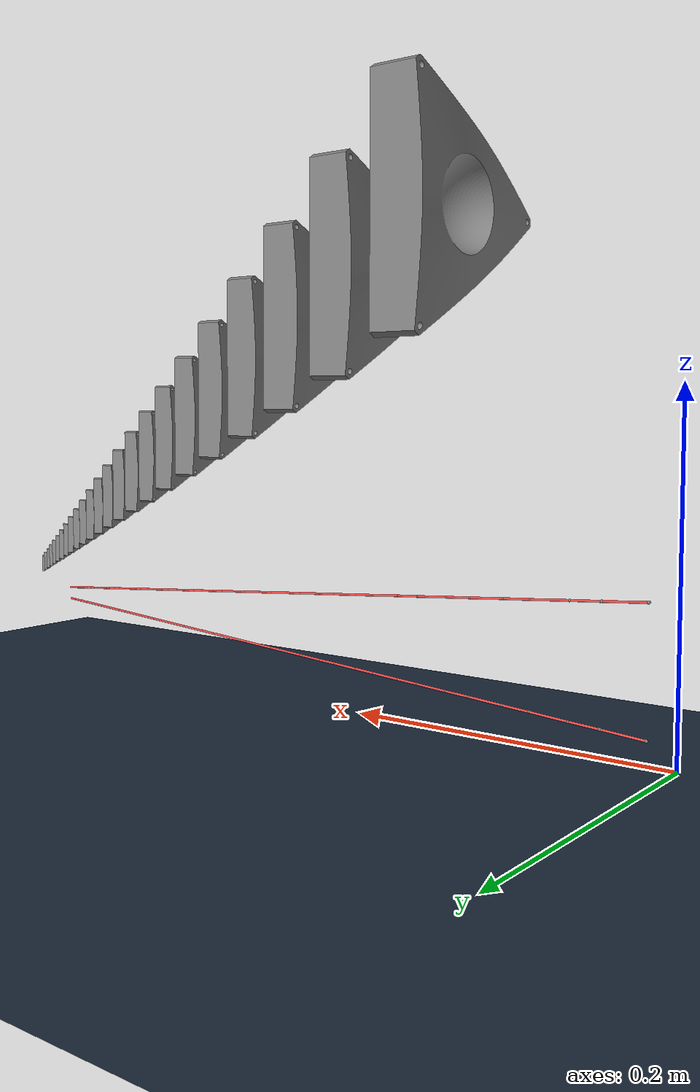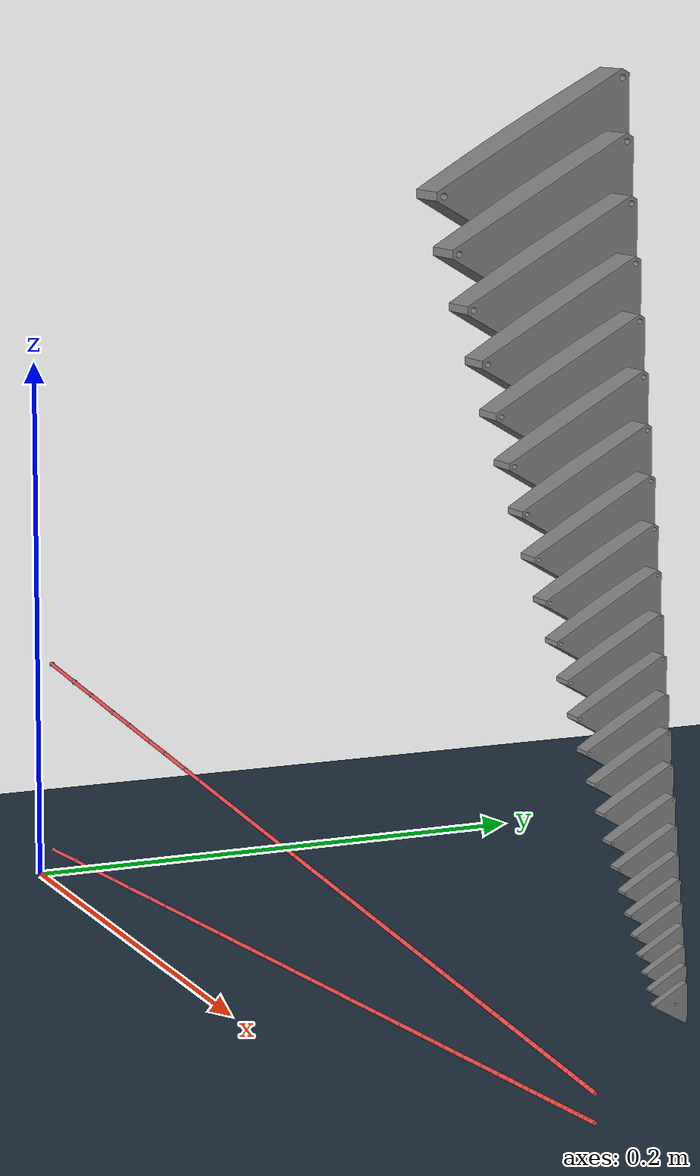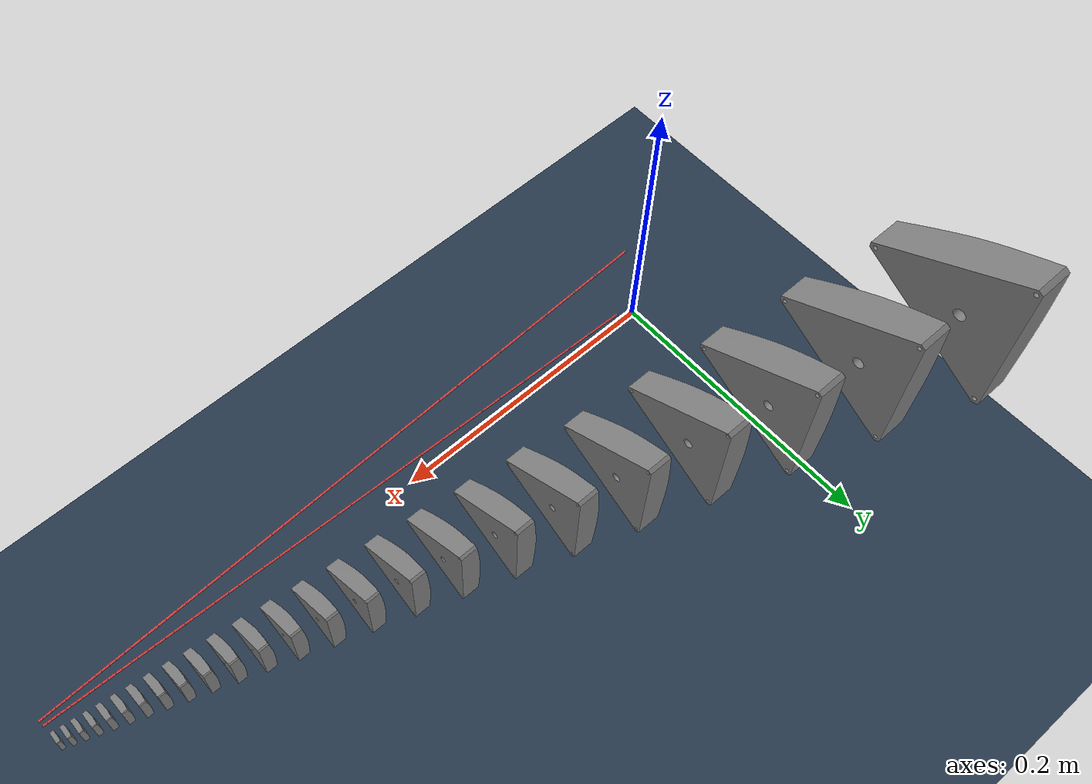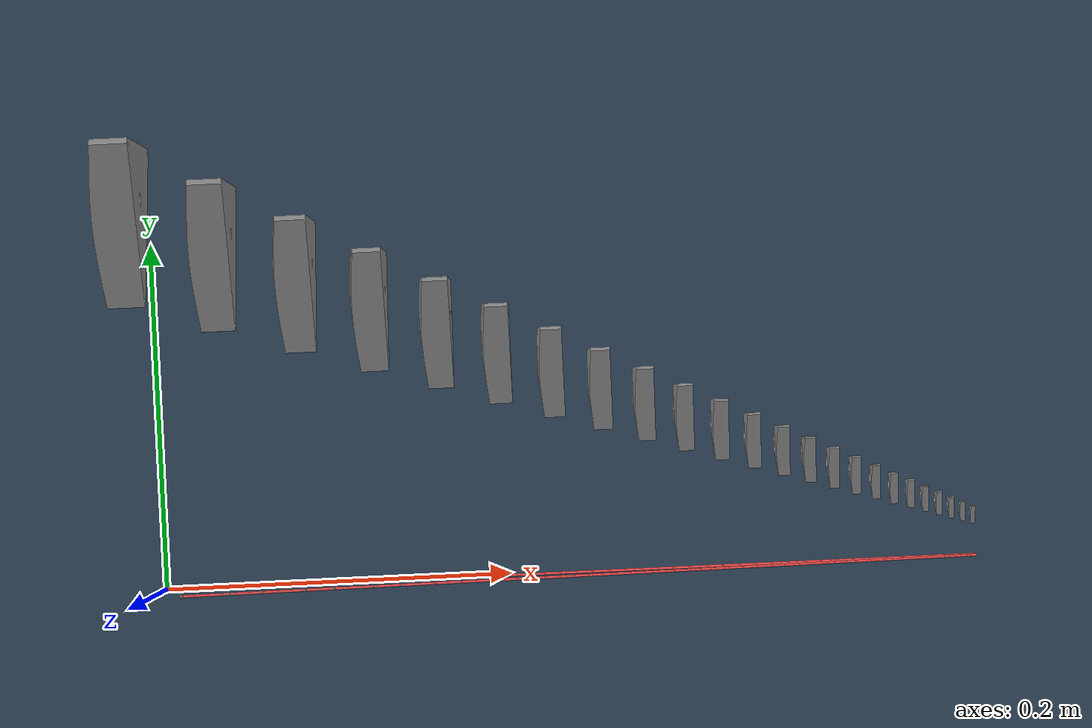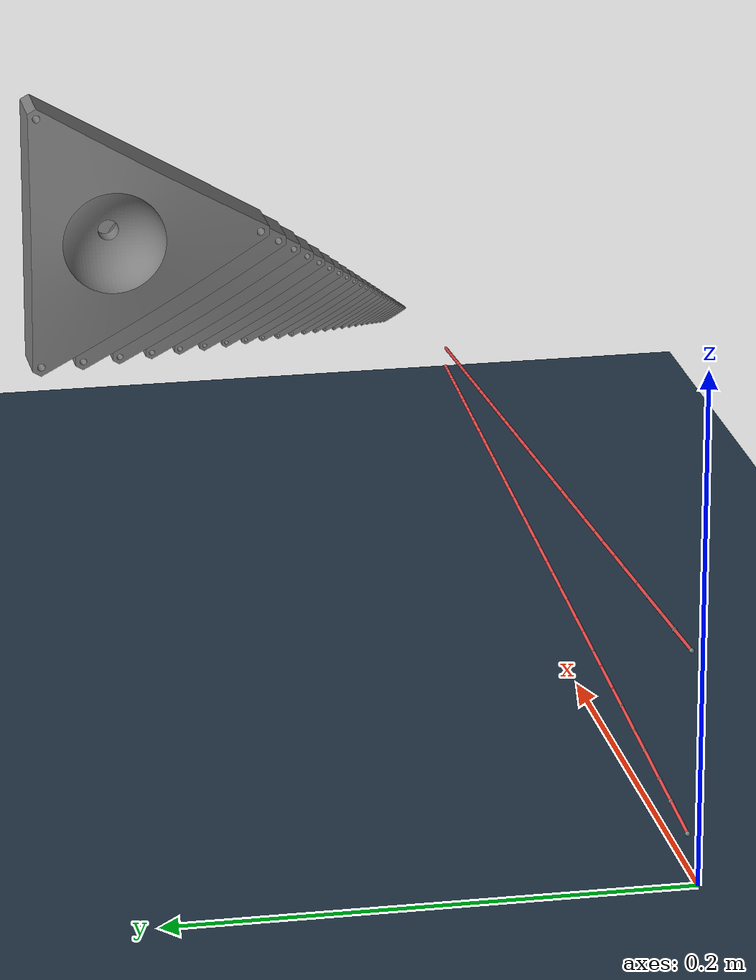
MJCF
<mujoco model="spiral_robot">
  <compiler angle="radian" meshdir="." />
  <option gravity="0 0 -9.81" timestep="0.001" solver="Newton" />
  <default>
    <geom density="1100" friction="1 0.5 0.5" contype="0" conaffinity="1" />
    <joint damping="1.0" armature="0.01" />
  </default>
  <asset>
    <mesh name="baselink_1" file="baselink.stl" scale="0.001000000 0.001000000 0.001000000" />
    <mesh name="baselink_2" file="baselink.stl" scale="0.000911774 0.000911774 0.000911774" />
    <mesh name="baselink_3" file="baselink.stl" scale="0.000831332 0.000831332 0.000831332" />
    <mesh name="baselink_4" file="baselink.stl" scale="0.000757987 0.000757987 0.000757987" />
    <mesh name="baselink_5" file="baselink.stl" scale="0.000691113 0.000691113 0.000691113" />
    <mesh name="baselink_6" file="baselink.stl" scale="0.000630139 0.000630139 0.000630139" />
    <mesh name="baselink_7" file="baselink.stl" scale="0.000574545 0.000574545 0.000574545" />
    <mesh name="baselink_8" file="baselink.stl" scale="0.000523855 0.000523855 0.000523855" />
    <mesh name="baselink_9" file="baselink.stl" scale="0.000477638 0.000477638 0.000477638" />
    <mesh name="baselink_10" file="baselink.stl" scale="0.000435498 0.000435498 0.000435498" />
    <mesh name="baselink_11" file="baselink.stl" scale="0.000397076 0.000397076 0.000397076" />
    <mesh name="baselink_12" file="baselink.stl" scale="0.000362043 0.000362043 0.000362043" />
    <mesh name="baselink_13" file="baselink.stl" scale="0.000330102 0.000330102 0.000330102" />
    <mesh name="baselink_14" file="baselink.stl" scale="0.000300978 0.000300978 0.000300978" />
    <mesh name="baselink_15" file="baselink.stl" scale="0.000274424 0.000274424 0.000274424" />
    <mesh name="baselink_16" file="baselink.stl" scale="0.000250213 0.000250213 0.000250213" />
    <mesh name="baselink_17" file="baselink.stl" scale="0.000228138 0.000228138 0.000228138" />
    <mesh name="baselink_18" file="baselink.stl" scale="0.000208010 0.000208010 0.000208010" />
    <mesh name="baselink_19" file="baselink.stl" scale="0.000189658 0.000189658 0.000189658" />
    <mesh name="baselink_20" file="baselink.stl" scale="0.000172926 0.000172926 0.000172926" />
    <mesh name="baselink_21" file="baselink.stl" scale="0.000157669 0.000157669 0.000157669" />
    <mesh name="baselink_22" file="baselink.stl" scale="0.000143759 0.000143759 0.000143759" />
    <mesh name="baselink_23" file="baselink.stl" scale="0.000131075 0.000131075 0.000131075" />
    <mesh name="baselink_24" file="baselink.stl" scale="0.000119511 0.000119511 0.000119511" />
    <texture name="texplane" type="2d" builtin="checker" rgb1=".2 .3 .4" rgb2=".1 0.15 0.2" width="512" height="512" mark="cross" markrgb=".8 .8 .8" />
    <material name="matplane" reflectance="0.3" texture="texplane" texrepeat="1 1" texuniform="true" />
  </asset>
  <worldbody>
    <geom name="ground" type="plane" size="10 10 1" pos="0 0 0" quat="1 0 0 0" material="matplane" condim="3" contype="1" conaffinity="1" />
    <light pos="1 0.5 0.7" dir="-1 -0.5 -1" directional="true" castshadow="false" diffuse="1 1 1" specular="0.3 0.3 0.3" />
    <body name="link1" pos="0 0 0.05" quat="0.5 0.5 0.5 0.5">
      <freejoint />
      <geom type="mesh" mesh="baselink_1" />
      <site name="s1_1" pos="0.000000000 0.036394210 0.016795002" size="0.001000 0.001000 0.001000" />
      <site name="s1_2" pos="0.000000000 0.034423562 0.042801474" size="0.001000 0.001000 0.001000" />
      <site name="s1_3" pos="0.000000000 -0.036394210 0.016795002" size="0.001000 0.001000 0.001000" />
      <site name="s1_4" pos="0.000000000 -0.034423562 0.042801474" size="0.001000 0.001000 0.001000" />
      <body name="link2" pos="0 0 0.045951152">
        <joint name="j1" type="hinge" axis="1 0 0" range="-0.523598776 0.523598776" stiffness="0.150000" damping="0.500000" frictionloss="0.015000" armature="0.010000" />
        <geom type="mesh" mesh="baselink_2" />
        <site name="s2_1" pos="0.000000000 0.033183304 0.015313251" size="0.000912 0.000912 0.000912" />
        <site name="s2_2" pos="0.000000000 0.031386518 0.039025283" size="0.000912 0.000912 0.000912" />
        <site name="s2_3" pos="0.000000000 -0.033183304 0.015313251" size="0.000912 0.000912 0.000912" />
        <site name="s2_4" pos="0.000000000 -0.031386518 0.039025283" size="0.000912 0.000912 0.000912" />
        <body name="link3" pos="0 0 0.041897079">
          <joint name="j2" type="hinge" axis="1 0 0" range="-0.523598776 0.523598776" stiffness="0.124700" damping="0.455887" frictionloss="0.012470" armature="0.009118" />
          <geom type="mesh" mesh="baselink_3" />
          <site name="s3_1" pos="0.000000000 0.030255683 0.013962228" size="0.000831 0.000831 0.000831" />
          <site name="s3_2" pos="0.000000000 0.028617420 0.035582249" size="0.000831 0.000831 0.000831" />
          <site name="s3_3" pos="0.000000000 -0.030255683 0.013962228" size="0.000831 0.000831 0.000831" />
          <site name="s3_4" pos="0.000000000 -0.028617420 0.035582249" size="0.000831 0.000831 0.000831" />
          <body name="link4" pos="0 0 0.038200679">
            <joint name="j3" type="hinge" axis="1 0 0" range="-0.523598776 0.523598776" stiffness="0.103667" damping="0.415666" frictionloss="0.010367" armature="0.008313" />
            <geom type="mesh" mesh="baselink_4" />
            <site name="s4_1" pos="0.000000000 0.027586354 0.012730400" size="0.000758 0.000758 0.000758" />
            <site name="s4_2" pos="0.000000000 0.026092627 0.032442980" size="0.000758 0.000758 0.000758" />
            <site name="s4_3" pos="0.000000000 -0.027586354 0.012730400" size="0.000758 0.000758 0.000758" />
            <site name="s4_4" pos="0.000000000 -0.026092627 0.032442980" size="0.000758 0.000758 0.000758" />
            <body name="link5" pos="0 0 0.034830396">
              <joint name="j4" type="hinge" axis="1 0 0" range="-0.523598776 0.523598776" stiffness="0.086182" damping="0.378993" frictionloss="0.008618" armature="0.007580" />
              <geom type="mesh" mesh="baselink_5" />
              <site name="s5_1" pos="0.000000000 0.025152528 0.011607252" size="0.000691 0.000691 0.000691" />
              <site name="s5_2" pos="0.000000000 0.023790586 0.029580674" size="0.000691 0.000691 0.000691" />
              <site name="s5_3" pos="0.000000000 -0.025152528 0.011607252" size="0.000691 0.000691 0.000691" />
              <site name="s5_4" pos="0.000000000 -0.023790586 0.029580674" size="0.000691 0.000691 0.000691" />
              <body name="link6" pos="0 0 0.031757459">
                <joint name="j5" type="hinge" axis="1 0 0" range="-0.523598776 0.523598776" stiffness="0.071646" damping="0.345556" frictionloss="0.007165" armature="0.006911" />
                <geom type="mesh" mesh="baselink_6" />
                <site name="s6_1" pos="0.000000000 0.022933428 0.010583193" size="0.000630 0.000630 0.000630" />
                <site name="s6_2" pos="0.000000000 0.021691645 0.026970898" size="0.000630 0.000630 0.000630" />
                <site name="s6_3" pos="0.000000000 -0.022933428 0.010583193" size="0.000630 0.000630 0.000630" />
                <site name="s6_4" pos="0.000000000 -0.021691645 0.026970898" size="0.000630 0.000630 0.000630" />
                <body name="link7" pos="0 0 0.028955634">
                  <joint name="j6" type="hinge" axis="1 0 0" range="-0.523598776 0.523598776" stiffness="0.059561" damping="0.315070" frictionloss="0.005956" armature="0.006301" />
                  <geom type="mesh" mesh="baselink_7" />
                  <site name="s7_1" pos="0.000000000 0.020910109 0.009649483" size="0.000575 0.000575 0.000575" />
                  <site name="s7_2" pos="0.000000000 0.019777884 0.024591371" size="0.000575 0.000575 0.000575" />
                  <site name="s7_3" pos="0.000000000 -0.020910109 0.009649483" size="0.000575 0.000575 0.000575" />
                  <site name="s7_4" pos="0.000000000 -0.019777884 0.024591371" size="0.000575 0.000575 0.000575" />
                  <body name="link8" pos="0 0 0.026401003">
                    <joint name="j7" type="hinge" axis="1 0 0" range="-0.523598776 0.523598776" stiffness="0.049515" damping="0.287272" frictionloss="0.004951" armature="0.005745" />
                    <geom type="mesh" mesh="baselink_8" />
                    <site name="s8_1" pos="0.000000000 0.019065300 0.008798151" size="0.000524 0.000524 0.000524" />
                    <site name="s8_2" pos="0.000000000 0.018032965 0.022421779" size="0.000524 0.000524 0.000524" />
                    <site name="s8_3" pos="0.000000000 -0.019065300 0.008798151" size="0.000524 0.000524 0.000524" />
                    <site name="s8_4" pos="0.000000000 -0.018032965 0.022421779" size="0.000524 0.000524 0.000524" />
                    <body name="link9" pos="0 0 0.024071755">
                      <joint name="j8" type="hinge" axis="1 0 0" range="-0.523598776 0.523598776" stiffness="0.041164" damping="0.261927" frictionloss="0.004116" armature="0.005239" />
                      <geom type="mesh" mesh="baselink_9" />
                      <site name="s9_1" pos="0.000000000 0.017383250 0.008021928" size="0.000478 0.000478 0.000478" />
                      <site name="s9_2" pos="0.000000000 0.016441994 0.020443602" size="0.000478 0.000478 0.000478" />
                      <site name="s9_3" pos="0.000000000 -0.017383250 0.008021928" size="0.000478 0.000478 0.000478" />
                      <site name="s9_4" pos="0.000000000 -0.016441994 0.020443602" size="0.000478 0.000478 0.000478" />
                      <body name="link10" pos="0 0 0.021948007">
                        <joint name="j9" type="hinge" axis="1 0 0" range="-0.523598776 0.523598776" stiffness="0.034221" damping="0.238819" frictionloss="0.003422" armature="0.004776" />
                        <geom type="mesh" mesh="baselink_10" />
                        <site name="s10_1" pos="0.000000000 0.015849600 0.007314187" size="0.000435 0.000435 0.000435" />
                        <site name="s10_2" pos="0.000000000 0.014991387 0.018639950" size="0.000435 0.000435 0.000435" />
                        <site name="s10_3" pos="0.000000000 -0.015849600 0.007314187" size="0.000435 0.000435 0.000435" />
                        <site name="s10_4" pos="0.000000000 -0.014991387 0.018639950" size="0.000435 0.000435 0.000435" />
                        <body name="link11" pos="0 0 0.020011628">
                          <joint name="j10" type="hinge" axis="1 0 0" range="-0.523598776 0.523598776" stiffness="0.028449" damping="0.217749" frictionloss="0.002845" armature="0.004355" />
                          <geom type="mesh" mesh="baselink_11" />
                          <site name="s11_1" pos="0.000000000 0.014451258 0.006668888" size="0.000397 0.000397 0.000397" />
                          <site name="s11_2" pos="0.000000000 0.013668761 0.016995427" size="0.000397 0.000397 0.000397" />
                          <site name="s11_3" pos="0.000000000 -0.014451258 0.006668888" size="0.000397 0.000397 0.000397" />
                          <site name="s11_4" pos="0.000000000 -0.013668761 0.016995427" size="0.000397 0.000397 0.000397" />
                          <body name="link12" pos="0 0 0.018246088">
                            <joint name="j11" type="hinge" axis="1 0 0" range="-0.523598776 0.523598776" stiffness="0.023651" damping="0.198538" frictionloss="0.002365" armature="0.003971" />
                            <geom type="mesh" mesh="baselink_12" />
                            <site name="s12_1" pos="0.000000000 0.013176285 0.006080520" size="0.000362 0.000362 0.000362" />
                            <site name="s12_2" pos="0.000000000 0.012462825 0.015495993" size="0.000362 0.000362 0.000362" />
                            <site name="s12_3" pos="0.000000000 -0.013176285 0.006080520" size="0.000362 0.000362 0.000362" />
                            <site name="s12_4" pos="0.000000000 -0.012462825 0.015495993" size="0.000362 0.000362 0.000362" />
                            <body name="link13" pos="0 0 0.016636313">
                              <joint name="j12" type="hinge" axis="1 0 0" range="-0.523598776 0.523598776" stiffness="0.019661" damping="0.181022" frictionloss="0.001966" armature="0.003620" />
                              <geom type="mesh" mesh="baselink_13" />
                              <site name="s13_1" pos="0.000000000 0.012013798 0.005544062" size="0.000330 0.000330 0.000330" />
                              <site name="s13_2" pos="0.000000000 0.011363283 0.014128848" size="0.000330 0.000330 0.000330" />
                              <site name="s13_3" pos="0.000000000 -0.012013798 0.005544062" size="0.000330 0.000330 0.000330" />
                              <site name="s13_4" pos="0.000000000 -0.011363283 0.014128848" size="0.000330 0.000330 0.000330" />
                              <body name="link14" pos="0 0 0.015168563">
                                <joint name="j13" type="hinge" axis="1 0 0" range="-0.523598776 0.523598776" stiffness="0.016345" damping="0.165051" frictionloss="0.001634" armature="0.003301" />
                                <geom type="mesh" mesh="baselink_14" />
                                <site name="s14_1" pos="0.000000000 0.010953872 0.005054933" size="0.000301 0.000301 0.000301" />
                                <site name="s14_2" pos="0.000000000 0.010360749 0.012882320" size="0.000301 0.000301 0.000301" />
                                <site name="s14_3" pos="0.000000000 -0.010953872 0.005054933" size="0.000301 0.000301 0.000301" />
                                <site name="s14_4" pos="0.000000000 -0.010360749 0.012882320" size="0.000301 0.000301 0.000301" />
                                <body name="link15" pos="0 0 0.013830305">
                                  <joint name="j14" type="hinge" axis="1 0 0" range="-0.523598776 0.523598776" stiffness="0.013588" damping="0.150489" frictionloss="0.001359" armature="0.003010" />
                                  <geom type="mesh" mesh="baselink_15" />
                                  <site name="s15_1" pos="0.000000000 0.009987459 0.004608958" size="0.000274 0.000274 0.000274" />
                                  <site name="s15_2" pos="0.000000000 0.009446665 0.011745768" size="0.000274 0.000274 0.000274" />
                                  <site name="s15_3" pos="0.000000000 -0.009987459 0.004608958" size="0.000274 0.000274 0.000274" />
                                  <site name="s15_4" pos="0.000000000 -0.009446665 0.011745768" size="0.000274 0.000274 0.000274" />
                                  <body name="link16" pos="0 0 0.012610117">
                                    <joint name="j15" type="hinge" axis="1 0 0" range="-0.523598776 0.523598776" stiffness="0.011296" damping="0.137212" frictionloss="0.001130" armature="0.002744" />
                                    <geom type="mesh" mesh="baselink_16" />
                                    <site name="s16_1" pos="0.000000000 0.009106308 0.004202329" size="0.000250 0.000250 0.000250" />
                                    <site name="s16_2" pos="0.000000000 0.008613226 0.010709489" size="0.000250 0.000250 0.000250" />
                                    <site name="s16_3" pos="0.000000000 -0.009106308 0.004202329" size="0.000250 0.000250 0.000250" />
                                    <site name="s16_4" pos="0.000000000 -0.008613226 0.010709489" size="0.000250 0.000250 0.000250" />
                                    <body name="link17" pos="0 0 0.011497580">
                                      <joint name="j16" type="hinge" axis="1 0 0" range="-0.523598776 0.523598776" stiffness="0.009391" damping="0.125107" frictionloss="0.000939" armature="0.002502" />
                                      <geom type="mesh" mesh="baselink_17" />
                                      <site name="s17_1" pos="0.000000000 0.008302897 0.003831576" size="0.000228 0.000228 0.000228" />
                                      <site name="s17_2" pos="0.000000000 0.007853318 0.009764637" size="0.000228 0.000228 0.000228" />
                                      <site name="s17_3" pos="0.000000000 -0.008302897 0.003831576" size="0.000228 0.000228 0.000228" />
                                      <site name="s17_4" pos="0.000000000 -0.007853318 0.009764637" size="0.000228 0.000228 0.000228" />
                                      <body name="link18" pos="0 0 0.010483198">
                                        <joint name="j17" type="hinge" axis="1 0 0" range="-0.523598776 0.523598776" stiffness="0.007807" damping="0.114069" frictionloss="0.000781" armature="0.002281" />
                                        <geom type="mesh" mesh="baselink_18" />
                                        <site name="s18_1" pos="0.000000000 0.007570368 0.003493532" size="0.000208 0.000208 0.000208" />
                                        <site name="s18_2" pos="0.000000000 0.007160453 0.008903145" size="0.000208 0.000208 0.000208" />
                                        <site name="s18_3" pos="0.000000000 -0.007570368 0.003493532" size="0.000208 0.000208 0.000208" />
                                        <site name="s18_4" pos="0.000000000 -0.007160453 0.008903145" size="0.000208 0.000208 0.000208" />
                                        <body name="link19" pos="0 0 0.009558310">
                                          <joint name="j18" type="hinge" axis="1 0 0" range="-0.523598776 0.523598776" stiffness="0.006490" damping="0.104005" frictionloss="0.000649" armature="0.002080" />
                                          <geom type="mesh" mesh="baselink_19" />
                                          <site name="s19_1" pos="0.000000000 0.006902467 0.003185313" size="0.000190 0.000190 0.000190" />
                                          <site name="s19_2" pos="0.000000000 0.006528717 0.008117658" size="0.000190 0.000190 0.000190" />
                                          <site name="s19_3" pos="0.000000000 -0.006902467 0.003185313" size="0.000190 0.000190 0.000190" />
                                          <site name="s19_4" pos="0.000000000 -0.006528717 0.008117658" size="0.000190 0.000190 0.000190" />
                                          <body name="link20" pos="0 0 0.008715021">
                                            <joint name="j19" type="hinge" axis="1 0 0" range="-0.523598776 0.523598776" stiffness="0.005396" damping="0.094829" frictionloss="0.000540" armature="0.001897" />
                                            <geom type="mesh" mesh="baselink_20" />
                                            <site name="s20_1" pos="0.000000000 0.006293492 0.002904286" size="0.000173 0.000173 0.000173" />
                                            <site name="s20_2" pos="0.000000000 0.005952716 0.007401472" size="0.000173 0.000173 0.000173" />
                                            <site name="s20_3" pos="0.000000000 -0.006293492 0.002904286" size="0.000173 0.000173 0.000173" />
                                            <site name="s20_4" pos="0.000000000 -0.005952716 0.007401472" size="0.000173 0.000173 0.000173" />
                                            <body name="link21" pos="0 0 0.007946132">
                                              <joint name="j20" type="hinge" axis="1 0 0" range="-0.523598776 0.523598776" stiffness="0.004486" damping="0.086463" frictionloss="0.000449" armature="0.001729" />
                                              <geom type="mesh" mesh="baselink_21" />
                                              <site name="s21_1" pos="0.000000000 0.005738244 0.002648054" size="0.000158 0.000158 0.000158" />
                                              <site name="s21_2" pos="0.000000000 0.005427533 0.006748472" size="0.000158 0.000158 0.000158" />
                                              <site name="s21_3" pos="0.000000000 -0.005738244 0.002648054" size="0.000158 0.000158 0.000158" />
                                              <site name="s21_4" pos="0.000000000 -0.005427533 0.006748472" size="0.000158 0.000158 0.000158" />
                                              <body name="link22" pos="0 0 0.007245079">
                                                <joint name="j21" type="hinge" axis="1 0 0" range="-0.523598776 0.523598776" stiffness="0.003729" damping="0.078835" frictionloss="0.000373" armature="0.001577" />
                                                <geom type="mesh" mesh="baselink_22" />
                                                <site name="s22_1" pos="0.000000000 0.005231983 0.002414427" size="0.000144 0.000144 0.000144" />
                                                <site name="s22_2" pos="0.000000000 0.004948685 0.006153083" size="0.000144 0.000144 0.000144" />
                                                <site name="s22_3" pos="0.000000000 -0.005231983 0.002414427" size="0.000144 0.000144 0.000144" />
                                                <site name="s22_4" pos="0.000000000 -0.004948685 0.006153083" size="0.000144 0.000144 0.000144" />
                                                <body name="link23" pos="0 0 0.006605876">
                                                  <joint name="j22" type="hinge" axis="1 0 0" range="-0.523598776 0.523598776" stiffness="0.003100" damping="0.071879" frictionloss="0.000310" armature="0.001438" />
                                                  <geom type="mesh" mesh="baselink_23" />
                                                  <site name="s23_1" pos="0.000000000 0.004770388 0.002201413" size="0.000131 0.000131 0.000131" />
                                                  <site name="s23_2" pos="0.000000000 0.004512084 0.005610223" size="0.000131 0.000131 0.000131" />
                                                  <site name="s23_3" pos="0.000000000 -0.004770388 0.002201413" size="0.000131 0.000131 0.000131" />
                                                  <site name="s23_4" pos="0.000000000 -0.004512084 0.005610223" size="0.000131 0.000131 0.000131" />
                                                  <body name="link24" pos="0 0 0.006023068">
                                                    <joint name="j23" type="hinge" axis="1 0 0" range="-0.523598776 0.523598776" stiffness="0.002577" damping="0.065537" frictionloss="0.000258" armature="0.001311" />
                                                    <geom type="mesh" mesh="baselink_24" />
                                                    <site name="s24_1" pos="0.000000000 0.004349517 0.002007191" size="0.000120 0.000120 0.000120" />
                                                    <site name="s24_2" pos="0.000000000 0.004114002 0.005115257" size="0.000120 0.000120 0.000120" />
                                                    <site name="s24_3" pos="0.000000000 -0.004349517 0.002007191" size="0.000120 0.000120 0.000120" />
                                                    <site name="s24_4" pos="0.000000000 -0.004114002 0.005115257" size="0.000120 0.000120 0.000120" />
                                                  </body>
                                                </body>
                                              </body>
                                            </body>
                                          </body>
                                        </body>
                                      </body>
                                    </body>
                                  </body>
                                </body>
                              </body>
                            </body>
                          </body>
                        </body>
                      </body>
                    </body>
                  </body>
                </body>
              </body>
            </body>
          </body>
        </body>
      </body>
    </body>
  </worldbody>
  <tendon>
    <spatial name="tendon1" width="0.0007" frictionloss="0.1" rgba=".95 .3 .3 1" limited="true" range="0.232041 0.928164">
      <site site="s1_1" />
      <site site="s1_2" />
      <site site="s2_1" />
      <site site="s2_2" />
      <site site="s3_1" />
      <site site="s3_2" />
      <site site="s4_1" />
      <site site="s4_2" />
      <site site="s5_1" />
      <site site="s5_2" />
      <site site="s6_1" />
      <site site="s6_2" />
      <site site="s7_1" />
      <site site="s7_2" />
      <site site="s8_1" />
      <site site="s8_2" />
      <site site="s9_1" />
      <site site="s9_2" />
      <site site="s10_1" />
      <site site="s10_2" />
      <site site="s11_1" />
      <site site="s11_2" />
      <site site="s12_1" />
      <site site="s12_2" />
      <site site="s13_1" />
      <site site="s13_2" />
      <site site="s14_1" />
      <site site="s14_2" />
      <site site="s15_1" />
      <site site="s15_2" />
      <site site="s16_1" />
      <site site="s16_2" />
      <site site="s17_1" />
      <site site="s17_2" />
      <site site="s18_1" />
      <site site="s18_2" />
      <site site="s19_1" />
      <site site="s19_2" />
      <site site="s20_1" />
      <site site="s20_2" />
      <site site="s21_1" />
      <site site="s21_2" />
      <site site="s22_1" />
      <site site="s22_2" />
      <site site="s23_1" />
      <site site="s23_2" />
      <site site="s24_1" />
      <site site="s24_2" />
    </spatial>
    <spatial name="tendon2" width="0.0007" frictionloss="0.1" rgba=".95 .3 .3 1" limited="true" range="0.232041 0.928164">
      <site site="s1_3" />
      <site site="s1_4" />
      <site site="s2_3" />
      <site site="s2_4" />
      <site site="s3_3" />
      <site site="s3_4" />
      <site site="s4_3" />
      <site site="s4_4" />
      <site site="s5_3" />
      <site site="s5_4" />
      <site site="s6_3" />
      <site site="s6_4" />
      <site site="s7_3" />
      <site site="s7_4" />
      <site site="s8_3" />
      <site site="s8_4" />
      <site site="s9_3" />
      <site site="s9_4" />
      <site site="s10_3" />
      <site site="s10_4" />
      <site site="s11_3" />
      <site site="s11_4" />
      <site site="s12_3" />
      <site site="s12_4" />
      <site site="s13_3" />
      <site site="s13_4" />
      <site site="s14_3" />
      <site site="s14_4" />
      <site site="s15_3" />
      <site site="s15_4" />
      <site site="s16_3" />
      <site site="s16_4" />
      <site site="s17_3" />
      <site site="s17_4" />
      <site site="s18_3" />
      <site site="s18_4" />
      <site site="s19_3" />
      <site site="s19_4" />
      <site site="s20_3" />
      <site site="s20_4" />
      <site site="s21_3" />
      <site site="s21_4" />
      <site site="s22_3" />
      <site site="s22_4" />
      <site site="s23_3" />
      <site site="s23_4" />
      <site site="s24_3" />
      <site site="s24_4" />
    </spatial>
  </tendon>
  <actuator>
    <muscle name="act1" tendon="tendon1" ctrllimited="true" ctrlrange="0 1" force="15" lengthrange="0.408637 0.925424" />
    <muscle name="act2" tendon="tendon2" ctrllimited="true" ctrlrange="0 1" force="15" lengthrange="0.408637 0.925424" />
    <position name="adj1" joint="j1" kp="10" ctrlrange="-0.523599 0.523599" forcerange="-1 1" />
    <position name="adj2" joint="j2" kp="10" ctrlrange="-0.523599 0.523599" forcerange="-1 1" />
    <position name="adj3" joint="j3" kp="10" ctrlrange="-0.523599 0.523599" forcerange="-1 1" />
    <position name="adj4" joint="j4" kp="10" ctrlrange="-0.523599 0.523599" forcerange="-1 1" />
    <position name="adj5" joint="j5" kp="10" ctrlrange="-0.523599 0.523599" forcerange="-1 1" />
    <position name="adj6" joint="j6" kp="10" ctrlrange="-0.523599 0.523599" forcerange="-1 1" />
    <position name="adj7" joint="j7" kp="10" ctrlrange="-0.523599 0.523599" forcerange="-1 1" />
    <position name="adj8" joint="j8" kp="10" ctrlrange="-0.523599 0.523599" forcerange="-1 1" />
    <position name="adj9" joint="j9" kp="10" ctrlrange="-0.523599 0.523599" forcerange="-1 1" />
    <position name="adj10" joint="j10" kp="10" ctrlrange="-0.523599 0.523599" forcerange="-1 1" />
    <position name="adj11" joint="j11" kp="10" ctrlrange="-0.523599 0.523599" forcerange="-1 1" />
    <position name="adj12" joint="j12" kp="10" ctrlrange="-0.523599 0.523599" forcerange="-1 1" />
    <position name="adj13" joint="j13" kp="10" ctrlrange="-0.523599 0.523599" forcerange="-1 1" />
    <position name="adj14" joint="j14" kp="10" ctrlrange="-0.523599 0.523599" forcerange="-1 1" />
    <position name="adj15" joint="j15" kp="10" ctrlrange="-0.523599 0.523599" forcerange="-1 1" />
    <position name="adj16" joint="j16" kp="10" ctrlrange="-0.523599 0.523599" forcerange="-1 1" />
    <position name="adj17" joint="j17" kp="10" ctrlrange="-0.523599 0.523599" forcerange="-1 1" />
    <position name="adj18" joint="j18" kp="10" ctrlrange="-0.523599 0.523599" forcerange="-1 1" />
    <position name="adj19" joint="j19" kp="10" ctrlrange="-0.523599 0.523599" forcerange="-1 1" />
    <position name="adj20" joint="j20" kp="10" ctrlrange="-0.523599 0.523599" forcerange="-1 1" />
    <position name="adj21" joint="j21" kp="10" ctrlrange="-0.523599 0.523599" forcerange="-1 1" />
    <position name="adj22" joint="j22" kp="10" ctrlrange="-0.523599 0.523599" forcerange="-1 1" />
    <position name="adj23" joint="j23" kp="10" ctrlrange="-0.523599 0.523599" forcerange="-1 1" />
  </actuator>
</mujoco>
